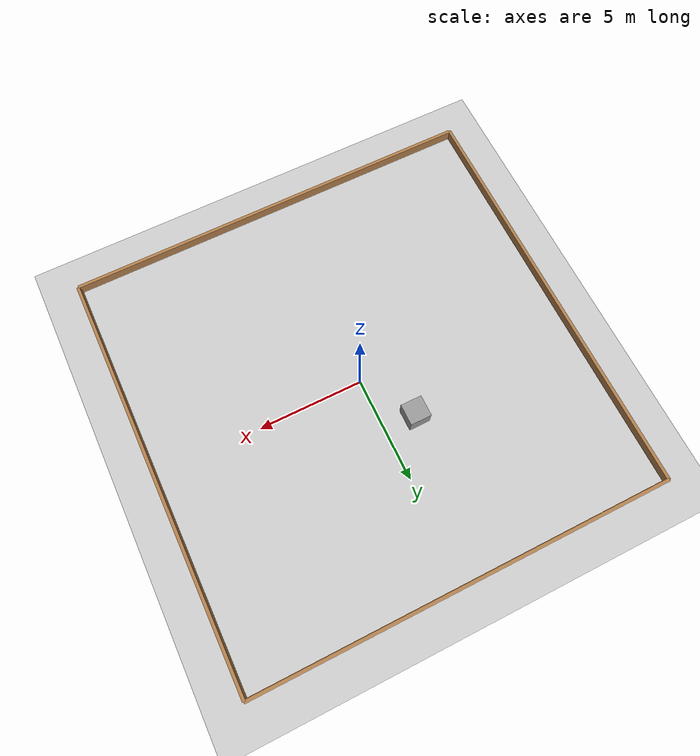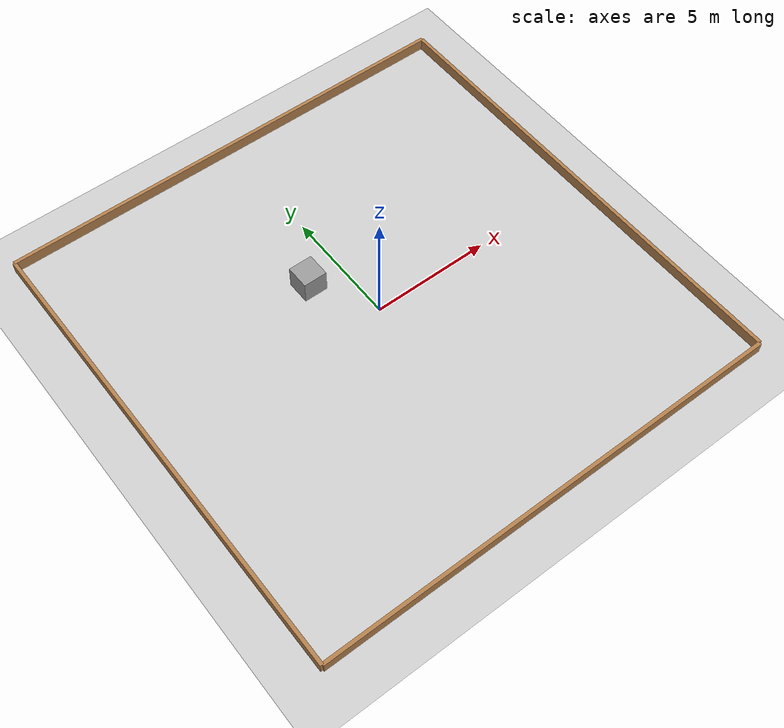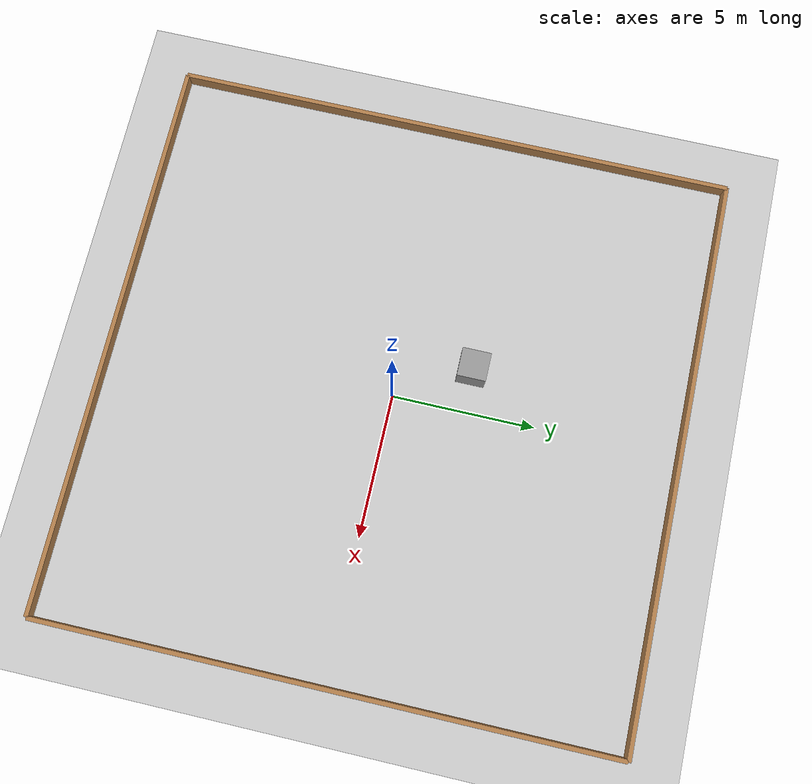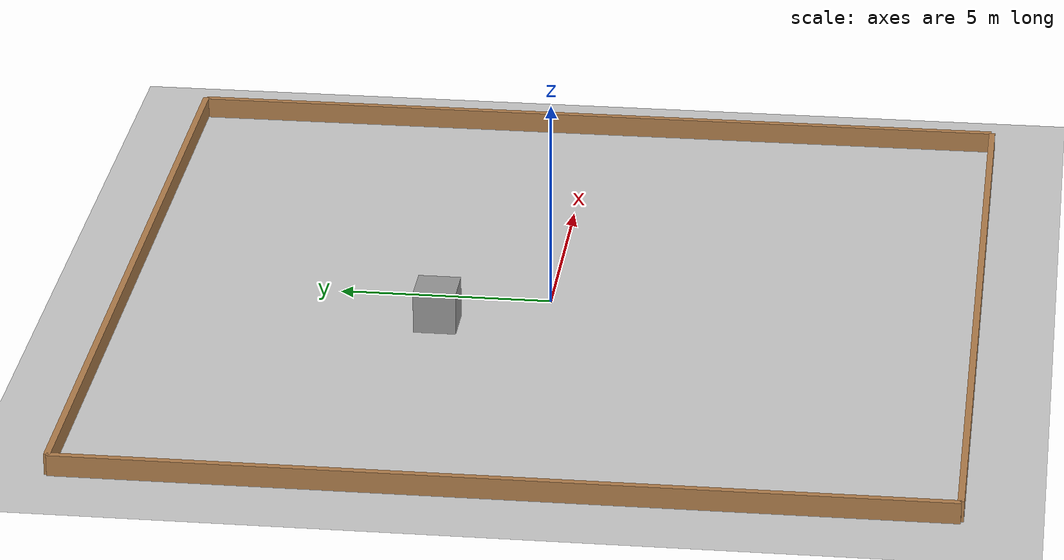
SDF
<sdf version="1.6">
 <world name="default">
  <light name="sun" type="directional">
   <pose>0 0 10 0 -0 0</pose>
   <diffuse>0.8 0.8 0.8 1</diffuse>
   <specular>0.2 0.2 0.2 1</specular>
   <attenuation>
    <range>1000</range>
    <constant>0.9</constant>
    <linear>0.01</linear>
    <quadratic>0.001</quadratic>
   </attenuation>
   <direction>-0.5 0.1 -0.9</direction>
  </light>
  <model name="ground_plane">
   <static>1</static>
   <link name="link">
    <collision name="collision">
     <geometry><plane><normal>0 0 1</normal><size>100 100</size></plane></geometry>
     <surface>
      <contact><collide_bitmask>65535</collide_bitmask></contact>
      <friction><ode><mu>100</mu><mu2>50</mu2></ode></friction>
     </surface>
    </collision>
    <visual name="visual">
     <cast_shadows>0</cast_shadows>
     <geometry><plane><normal>0 0 1</normal><size>100 100</size></plane></geometry>
     <material>
      <script><uri>file://media/materials/scripts/gazebo.material</uri><name>Gazebo/Grey</name></script>
     </material>
    </visual>
   </link>
  </model>
  <model name="unit_box_0_0">
   <pose>-1.49999 2.51072 0.499995 0 1e-05 -2e-06</pose>
   <link name="link">
    <inertial>
     <mass>1</mass>
     <inertia>
      <ixx>0.166667</ixx>
      <ixy>0</ixy>
      <ixz>0</ixz>
      <iyy>0.166667</iyy>
      <iyz>0</iyz>
      <izz>0.166667</izz>
     </inertia>
    </inertial>
    <collision name="collision"><geometry><box><size>1 1 1</size></box></geometry></collision>
    <visual name="visual">
     <geometry><box><size>1 1 1</size></box></geometry>
     <material>
      <script><name>Gazebo/Grey</name><uri>file://media/materials/scripts/gazebo.material</uri></script>
     </material>
    </visual>
   </link>
  </model>
  <gravity>0 0 -9.8</gravity>
  <magnetic_field>6e-06 2.3e-05 -4.2e-05</magnetic_field>
  <atmosphere type="adiabatic"/>
  <physics name="default_physics" default="0" type="ode">
   <max_step_size>0.001</max_step_size>
   <real_time_factor>1</real_time_factor>
   <real_time_update_rate>1000</real_time_update_rate>
  </physics>
  <scene><ambient>0.4 0.4 0.4 1</ambient><background>0.7 0.7 0.7 1</background><shadows>1</shadows></scene>
  <audio><device>default</device></audio>
  <spherical_coordinates>
   <surface_model>EARTH_WGS84</surface_model>
   <latitude_deg>0</latitude_deg>
   <longitude_deg>0</longitude_deg>
   <elevation>0</elevation>
   <heading_deg>0</heading_deg>
  </spherical_coordinates>
  <model name="turtlebot3_square">
   <link name="Wall_0">
    <pose>0 10 0 0 -0 0</pose>
    <inertial>
     <mass>5.00857</mass>
     <inertia><ixx>0.113736</ixx><ixy>0</ixy><ixz>0</ixz><iyy>167.629</iyy><iyz>0</iyz><izz>167.534</izz></inertia>
    </inertial>
    <visual name="Wall_0_Visual">
     <pose>0 0 0.25 0 -0 0</pose>
     <geometry><box><size>20.0343 0.15 0.5</size></box></geometry>
     <material>
      <script><uri>file://media/materials/scripts/gazebo.material</uri><name>Gazebo/Wood</name></script>
      <ambient>1 1 1 1</ambient>
      <shader type="vertex"><normal_map>__default__</normal_map></shader>
      <diffuse>1 1 1 1</diffuse>
      <specular>0.2 0.2 0.2 1</specular>
      <emissive>0 0 0 1</emissive>
     </material>
    </visual>
    <collision name="Wall_0_Collision">
     <pose>0 0 0.25 0 -0 0</pose>
     <geometry><box><size>20.0343 0.15 0.5</size></box></geometry>
     <surface>
      <friction>
       <ode><mu>1</mu><mu2>1</mu2><fdir1>0 0 0</fdir1><slip1>0</slip1><slip2>0</slip2></ode>
       <torsional>
        <coefficient>1</coefficient>
        <patch_radius>0</patch_radius>
        <surface_radius>0</surface_radius>
        <use_patch_radius>1</use_patch_radius>
        <ode><slip>0</slip></ode>
       </torsional>
      </friction>
      <bounce><restitution_coefficient>0</restitution_coefficient><threshold>1e+06</threshold></bounce>
      <contact>
       <collide_without_contact>0</collide_without_contact>
       <collide_without_contact_bitmask>1</collide_without_contact_bitmask>
       <collide_bitmask>1</collide_bitmask>
       <ode>
        <soft_cfm>0</soft_cfm>
        <soft_erp>0.2</soft_erp>
        <kp>1e+13</kp>
        <kd>1</kd>
        <max_vel>0.01</max_vel>
        <min_depth>0</min_depth>
       </ode>
       <bullet>
        <split_impulse>1</split_impulse>
        <split_impulse_penetration_threshold>-0.01</split_impulse_penetration_threshold>
        <soft_cfm>0</soft_cfm>
        <soft_erp>0.2</soft_erp>
        <kp>1e+13</kp>
        <kd>1</kd>
       </bullet>
      </contact>
     </surface>
    </collision>
   </link>
   <link name="Wall_2">
    <pose>-10 0 0 0 0 -1.5708</pose>
    <inertial>
     <inertia><ixx>0</ixx><ixy>0</ixy><ixz>0</ixz><iyy>0</iyy><iyz>0</iyz><izz>0</izz></inertia>
     <mass>0</mass>
    </inertial>
    <visual name="Wall_2_Visual">
     <pose>0 0 0.25 0 -0 0</pose>
     <geometry><box><size>20.0239 0.15 0.5</size></box></geometry>
     <material>
      <script><uri>file://media/materials/scripts/gazebo.material</uri><name>Gazebo/Wood</name></script>
      <ambient>1 1 1 1</ambient>
      <shader type="vertex"><normal_map>__default__</normal_map></shader>
      <diffuse>1 1 1 1</diffuse>
      <specular>0.2 0.2 0.2 1</specular>
      <emissive>0 0 0 1</emissive>
     </material>
    </visual>
    <collision name="Wall_2_Collision">
     <pose>0 0 0.25 0 -0 0</pose>
     <geometry><box><size>20.0239 0.15 0.5</size></box></geometry>
     <surface>
      <friction>
       <ode><mu>1</mu><mu2>1</mu2><fdir1>0 0 0</fdir1><slip1>0</slip1><slip2>0</slip2></ode>
       <torsional>
        <coefficient>1</coefficient>
        <patch_radius>0</patch_radius>
        <surface_radius>0</surface_radius>
        <use_patch_radius>1</use_patch_radius>
        <ode><slip>0</slip></ode>
       </torsional>
      </friction>
      <bounce><restitution_coefficient>0</restitution_coefficient><threshold>1e+06</threshold></bounce>
      <contact>
       <collide_without_contact>0</collide_without_contact>
       <collide_without_contact_bitmask>1</collide_without_contact_bitmask>
       <collide_bitmask>1</collide_bitmask>
       <ode>
        <soft_cfm>0</soft_cfm>
        <soft_erp>0.2</soft_erp>
        <kp>1e+13</kp>
        <kd>1</kd>
        <max_vel>0.01</max_vel>
        <min_depth>0</min_depth>
       </ode>
       <bullet>
        <split_impulse>1</split_impulse>
        <split_impulse_penetration_threshold>-0.01</split_impulse_penetration_threshold>
        <soft_cfm>0</soft_cfm>
        <soft_erp>0.2</soft_erp>
        <kp>1e+13</kp>
        <kd>1</kd>
       </bullet>
      </contact>
     </surface>
    </collision>
   </link>
   <link name="Wall_3">
    <pose>0 -10 0 0 -0 0</pose>
    <inertial>
     <inertia><ixx>0</ixx><ixy>0</ixy><ixz>0</ixz><iyy>0</iyy><iyz>0</iyz><izz>0</izz></inertia>
     <mass>0</mass>
    </inertial>
    <visual name="Wall_3_Visual">
     <pose>0 0 0.25 0 -0 0</pose>
     <geometry><box><size>19.957 0.15 0.5</size></box></geometry>
     <material>
      <script><uri>file://media/materials/scripts/gazebo.material</uri><name>Gazebo/Wood</name></script>
      <ambient>1 1 1 1</ambient>
      <shader type="vertex"><normal_map>__default__</normal_map></shader>
      <diffuse>1 1 1 1</diffuse>
      <specular>0.2 0.2 0.2 1</specular>
      <emissive>0 0 0 1</emissive>
     </material>
    </visual>
    <collision name="Wall_3_Collision">
     <pose>0 0 0.25 0 -0 0</pose>
     <geometry><box><size>19.957 0.15 0.5</size></box></geometry>
     <surface>
      <friction>
       <ode><mu>1</mu><mu2>1</mu2><fdir1>0 0 0</fdir1><slip1>0</slip1><slip2>0</slip2></ode>
       <torsional>
        <coefficient>1</coefficient>
        <patch_radius>0</patch_radius>
        <surface_radius>0</surface_radius>
        <use_patch_radius>1</use_patch_radius>
        <ode><slip>0</slip></ode>
       </torsional>
      </friction>
      <bounce><restitution_coefficient>0</restitution_coefficient><threshold>1e+06</threshold></bounce>
      <contact>
       <collide_without_contact>0</collide_without_contact>
       <collide_without_contact_bitmask>1</collide_without_contact_bitmask>
       <collide_bitmask>1</collide_bitmask>
       <ode>
        <soft_cfm>0</soft_cfm>
        <soft_erp>0.2</soft_erp>
        <kp>1e+13</kp>
        <kd>1</kd>
        <max_vel>0.01</max_vel>
        <min_depth>0</min_depth>
       </ode>
       <bullet>
        <split_impulse>1</split_impulse>
        <split_impulse_penetration_threshold>-0.01</split_impulse_penetration_threshold>
        <soft_cfm>0</soft_cfm>
        <soft_erp>0.2</soft_erp>
        <kp>1e+13</kp>
        <kd>1</kd>
       </bullet>
      </contact>
     </surface>
    </collision>
   </link>
   <link name="Wall_4">
    <pose>10 0 0 0 -0 1.5708</pose>
    <inertial>
     <mass>4.99006</mass>
     <inertia><ixx>0.113316</ixx><ixy>0</ixy><ixz>0</ixz><iyy>165.779</iyy><iyz>0</iyz><izz>165.685</izz></inertia>
    </inertial>
    <visual name="Wall_4_Visual">
     <pose>0 0 0.25 0 -0 0</pose>
     <geometry><box><size>19.9603 0.15 0.5</size></box></geometry>
     <material>
      <script><uri>file://media/materials/scripts/gazebo.material</uri><name>Gazebo/Wood</name></script>
      <ambient>1 1 1 1</ambient>
      <shader type="vertex"><normal_map>__default__</normal_map></shader>
      <diffuse>1 1 1 1</diffuse>
      <specular>0.2 0.2 0.2 1</specular>
      <emissive>0 0 0 1</emissive>
     </material>
    </visual>
    <collision name="Wall_4_Collision">
     <pose>0 0 0.25 0 -0 0</pose>
     <geometry><box><size>19.9603 0.15 0.5</size></box></geometry>
     <surface>
      <friction>
       <ode><mu>1</mu><mu2>1</mu2><fdir1>0 0 0</fdir1><slip1>0</slip1><slip2>0</slip2></ode>
       <torsional>
        <coefficient>1</coefficient>
        <patch_radius>0</patch_radius>
        <surface_radius>0</surface_radius>
        <use_patch_radius>1</use_patch_radius>
        <ode><slip>0</slip></ode>
       </torsional>
      </friction>
      <bounce><restitution_coefficient>0</restitution_coefficient><threshold>1e+06</threshold></bounce>
      <contact>
       <collide_without_contact>0</collide_without_contact>
       <collide_without_contact_bitmask>1</collide_without_contact_bitmask>
       <collide_bitmask>1</collide_bitmask>
       <ode>
        <soft_cfm>0</soft_cfm>
        <soft_erp>0.2</soft_erp>
        <kp>1e+13</kp>
        <kd>1</kd>
        <max_vel>0.01</max_vel>
        <min_depth>0</min_depth>
       </ode>
       <bullet>
        <split_impulse>1</split_impulse>
        <split_impulse_penetration_threshold>-0.01</split_impulse_penetration_threshold>
        <soft_cfm>0</soft_cfm>
        <soft_erp>0.2</soft_erp>
        <kp>1e+13</kp>
        <kd>1</kd>
       </bullet>
      </contact>
     </surface>
    </collision>
   </link>
   <static>1</static>
  </model>
 </world>
</sdf>
